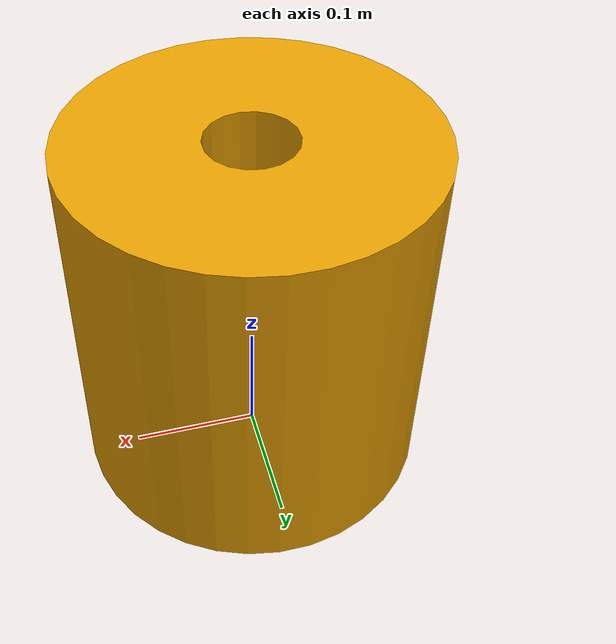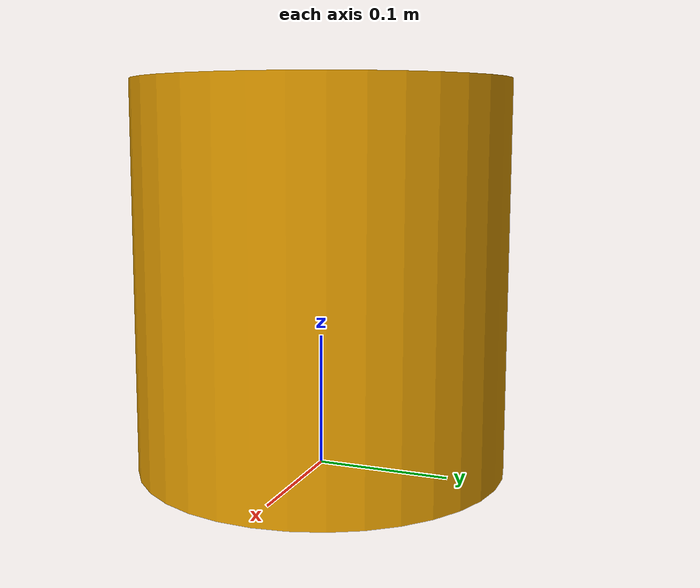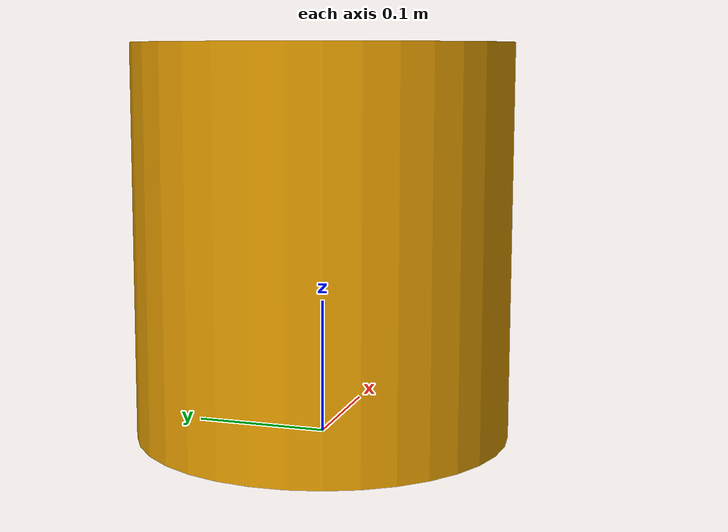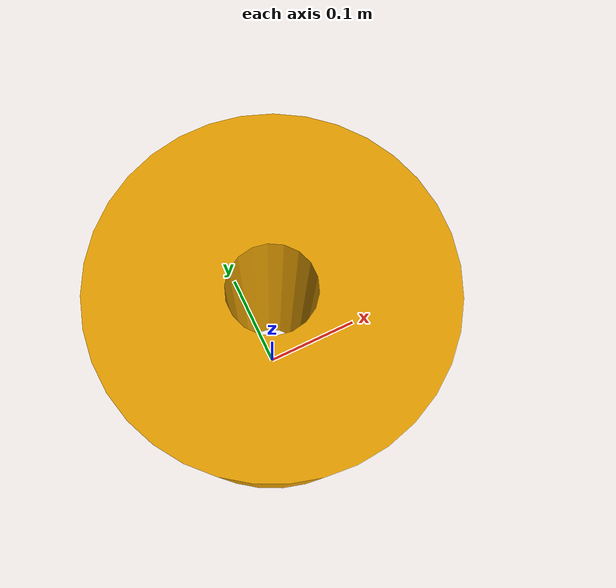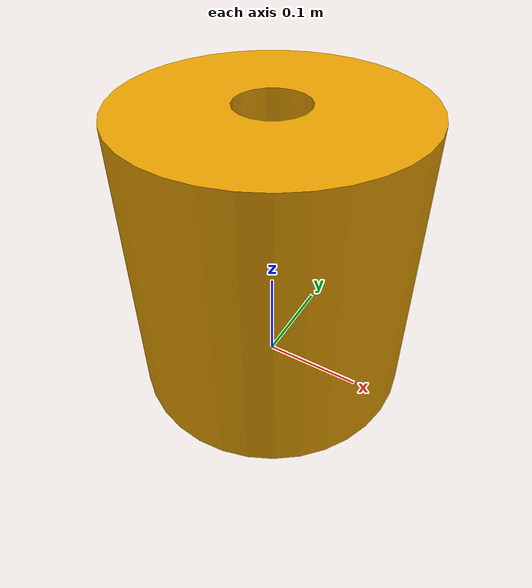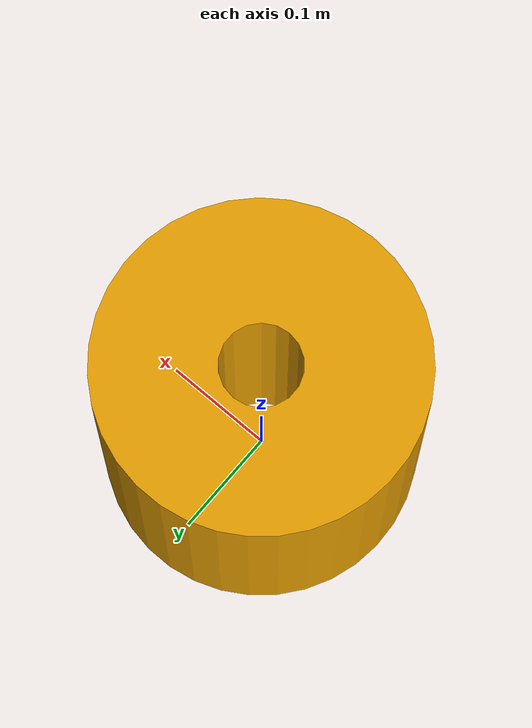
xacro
<?xml version="1.0"?>
<robot name="cone"
       xmlns:xacro="http://ros.org/wiki/xacro">

  <link name="cone_link" >
    <visual>
      <origin xyz="0 0 0" rpy="${pi/2} 0 0" />
      <geometry>
	<mesh filename="package://mobile_manipulator/models/fixed_cone/meshes/Cone100.STL"/>
      </geometry>
    </visual>
    <collision>
      <origin xyz="0 0 0" rpy="${pi/2} 0 0" />
      <geometry>
	<mesh filename="package://mobile_manipulator/models/fixed_cone/meshes/Cone100.STL"/>
      </geometry>
    </collision>
    <inertial>
      <mass value="1" />
      <inertia ixx="0.01" ixy="0.005" ixz="0.0003" iyy="0.02" iyz="0.00004" izz="0.02" />
    </inertial>
  </link>

</robot>
